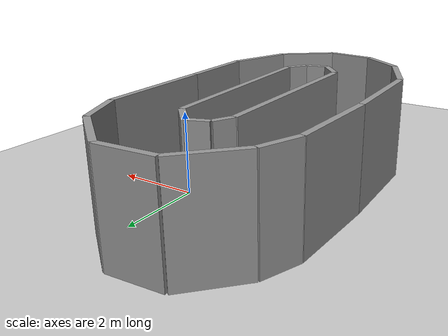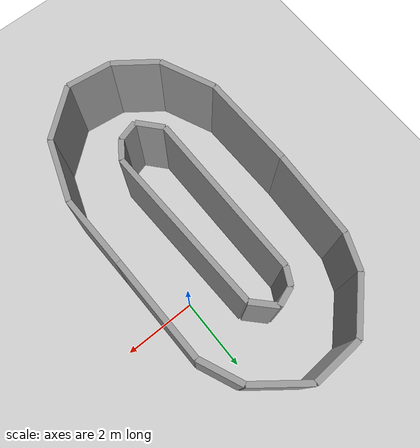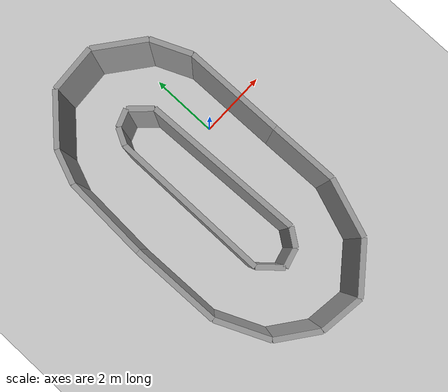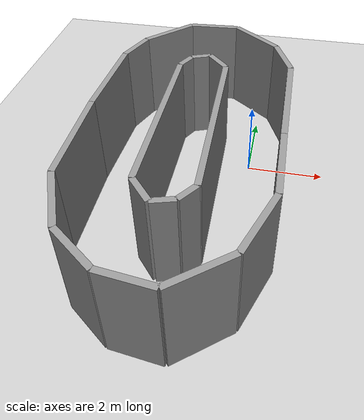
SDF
<sdf version="1.6">
 <world name="default">
  <model name="ground_plane">
   <static>1</static>
   <link name="link">
    <collision name="collision">
     <geometry><plane><normal>0 0 1</normal><size>100 100</size></plane></geometry>
     <surface><friction><ode><mu>100</mu><mu2>50</mu2></ode></friction></surface>
    </collision>
    <visual name="visual">
     <cast_shadows>0</cast_shadows>
     <geometry><plane><normal>0 0 1</normal><size>100 100</size></plane></geometry>
     <material>
      <script><uri>file://media/materials/scripts/gazebo.material</uri><name>Gazebo/Grey</name></script>
     </material>
    </visual>
   </link>
  </model>
  <model name="track2">
   <link name="wall_000">
    <collision name="wall_000_Collision">
     <geometry><box><size>1.195634 0.15 2.5</size></box></geometry>
     <pose>0 0 1.25 0 -0 0</pose>
    </collision>
    <visual name="wall_000_Visual">
     <pose>0 0 1.25 0 -0 0</pose>
     <geometry><box><size>1.195634 0.15 2.5</size></box></geometry>
     <material>
      <script><uri>file://media/materials/scripts/gazebo.material</uri><name>Gazebo/Grey</name></script>
      <ambient>1 1 1 1</ambient>
     </material>
     <meta><layer>0</layer></meta>
    </visual>
    <pose>0.586740 1.912500 0 0 -0 -1.157576</pose>
   </link>
   <link name="wall_001">
    <collision name="wall_001_Collision">
     <geometry><box><size>1.548632 0.15 2.5</size></box></geometry>
     <pose>0 0 1.25 0 -0 0</pose>
    </collision>
    <visual name="wall_001_Visual">
     <pose>0 0 1.25 0 -0 0</pose>
     <geometry><box><size>1.548632 0.15 2.5</size></box></geometry>
     <material>
      <script><uri>file://media/materials/scripts/gazebo.material</uri><name>Gazebo/Grey</name></script>
      <ambient>1 1 1 1</ambient>
     </material>
     <meta><layer>0</layer></meta>
    </visual>
    <pose>-0.266760 2.932500 0 0 -0 -0.656333</pose>
   </link>
   <link name="wall_002">
    <collision name="wall_002_Collision">
     <geometry><box><size>1.362576 0.15 2.5</size></box></geometry>
     <pose>0 0 1.25 0 -0 0</pose>
    </collision>
    <visual name="wall_002_Visual">
     <pose>0 0 1.25 0 -0 0</pose>
     <geometry><box><size>1.362576 0.15 2.5</size></box></geometry>
     <material>
      <script><uri>file://media/materials/scripts/gazebo.material</uri><name>Gazebo/Grey</name></script>
      <ambient>1 1 1 1</ambient>
     </material>
     <meta><layer>0</layer></meta>
    </visual>
    <pose>-1.560000 3.360000 0 0 -0 0.066100</pose>
   </link>
   <link name="wall_003">
    <collision name="wall_003_Collision">
     <geometry><box><size>1.558364 0.15 2.5</size></box></geometry>
     <pose>0 0 1.25 0 -0 0</pose>
    </collision>
    <visual name="wall_003_Visual">
     <pose>0 0 1.25 0 -0 0</pose>
     <geometry><box><size>1.558364 0.15 2.5</size></box></geometry>
     <material>
      <script><uri>file://media/materials/scripts/gazebo.material</uri><name>Gazebo/Grey</name></script>
      <ambient>1 1 1 1</ambient>
     </material>
     <meta><layer>0</layer></meta>
    </visual>
    <pose>-2.786700 2.760000 0 0 -0 0.792749</pose>
   </link>
   <link name="wall_004">
    <collision name="wall_004_Collision">
     <geometry><box><size>0.983273 0.15 2.5</size></box></geometry>
     <pose>0 0 1.25 0 -0 0</pose>
    </collision>
    <visual name="wall_004_Visual">
     <pose>0 0 1.25 0 -0 0</pose>
     <geometry><box><size>0.983273 0.15 2.5</size></box></geometry>
     <material>
      <script><uri>file://media/materials/scripts/gazebo.material</uri><name>Gazebo/Grey</name></script>
      <ambient>1 1 1 1</ambient>
     </material>
     <meta><layer>0</layer></meta>
    </visual>
    <pose>-3.513600 1.747500 0 0 -0 1.195956</pose>
   </link>
   <link name="wall_005">
    <collision name="wall_005_Collision">
     <geometry><box><size>2.372378 0.15 2.5</size></box></geometry>
     <pose>0 0 1.25 0 -0 0</pose>
    </collision>
    <visual name="wall_005_Visual">
     <pose>0 0 1.25 0 -0 0</pose>
     <geometry><box><size>2.372378 0.15 2.5</size></box></geometry>
     <material>
      <script><uri>file://media/materials/scripts/gazebo.material</uri><name>Gazebo/Grey</name></script>
      <ambient>1 1 1 1</ambient>
     </material>
     <meta><layer>0</layer></meta>
    </visual>
    <pose>-3.746700 0.105000 0 0 -0 1.526016</pose>
   </link>
   <link name="wall_006">
    <collision name="wall_006_Collision">
     <geometry><box><size>2.535562 0.15 2.5</size></box></geometry>
     <pose>0 0 1.25 0 -0 0</pose>
    </collision>
    <visual name="wall_006_Visual">
     <pose>0 0 1.25 0 -0 0</pose>
     <geometry><box><size>2.535562 0.15 2.5</size></box></geometry>
     <material>
      <script><uri>file://media/materials/scripts/gazebo.material</uri><name>Gazebo/Grey</name></script>
      <ambient>1 1 1 1</ambient>
     </material>
     <meta><layer>0</layer></meta>
    </visual>
    <pose>-3.773100 -2.347500 0 0 -0 1.591858</pose>
   </link>
   <link name="wall_007">
    <collision name="wall_007_Collision">
     <geometry><box><size>1.561958 0.15 2.5</size></box></geometry>
     <pose>0 0 1.25 0 -0 0</pose>
    </collision>
    <visual name="wall_007_Visual">
     <pose>0 0 1.25 0 -0 0</pose>
     <geometry><box><size>1.561958 0.15 2.5</size></box></geometry>
     <material>
      <script><uri>file://media/materials/scripts/gazebo.material</uri><name>Gazebo/Grey</name></script>
      <ambient>1 1 1 1</ambient>
     </material>
     <meta><layer>0</layer></meta>
    </visual>
    <pose>-3.426600 -4.327500 0 0 -0 1.992687</pose>
   </link>
   <link name="wall_008">
    <collision name="wall_008_Collision">
     <geometry><box><size>1.280286 0.15 2.5</size></box></geometry>
     <pose>0 0 1.25 0 -0 0</pose>
    </collision>
    <visual name="wall_008_Visual">
     <pose>0 0 1.25 0 -0 0</pose>
     <geometry><box><size>1.280286 0.15 2.5</size></box></geometry>
     <material>
      <script><uri>file://media/materials/scripts/gazebo.material</uri><name>Gazebo/Grey</name></script>
      <ambient>1 1 1 1</ambient>
     </material>
     <meta><layer>0</layer></meta>
    </visual>
    <pose>-2.593500 -5.422500 0 0 -0 2.501185</pose>
   </link>
   <link name="wall_009">
    <collision name="wall_009_Collision">
     <geometry><box><size>1.236135 0.15 2.5</size></box></geometry>
     <pose>0 0 1.25 0 -0 0</pose>
    </collision>
    <visual name="wall_009_Visual">
     <pose>0 0 1.25 0 -0 0</pose>
     <geometry><box><size>1.236135 0.15 2.5</size></box></geometry>
     <material>
      <script><uri>file://media/materials/scripts/gazebo.material</uri><name>Gazebo/Grey</name></script>
      <ambient>1 1 1 1</ambient>
     </material>
     <meta><layer>0</layer></meta>
    </visual>
    <pose>-1.466700 -5.880000 0 0 -0 3.019947</pose>
   </link>
   <link name="wall_010">
    <collision name="wall_010_Collision">
     <geometry><box><size>1.536656 0.15 2.5</size></box></geometry>
     <pose>0 0 1.25 0 -0 0</pose>
    </collision>
    <visual name="wall_010_Visual">
     <pose>0 0 1.25 0 -0 0</pose>
     <geometry><box><size>1.536656 0.15 2.5</size></box></geometry>
     <material>
      <script><uri>file://media/materials/scripts/gazebo.material</uri><name>Gazebo/Grey</name></script>
      <ambient>1 1 1 1</ambient>
     </material>
     <meta><layer>0</layer></meta>
    </visual>
    <pose>-0.253260 -5.475000 0 0 -0 -2.466803</pose>
   </link>
   <link name="wall_011">
    <collision name="wall_011_Collision">
     <geometry><box><size>1.685708 0.15 2.5</size></box></geometry>
     <pose>0 0 1.25 0 -0 0</pose>
    </collision>
    <visual name="wall_011_Visual">
     <pose>0 0 1.25 0 -0 0</pose>
     <geometry><box><size>1.685708 0.15 2.5</size></box></geometry>
     <material>
      <script><uri>file://media/materials/scripts/gazebo.material</uri><name>Gazebo/Grey</name></script>
      <ambient>1 1 1 1</ambient>
     </material>
     <meta><layer>0</layer></meta>
    </visual>
    <pose>0.626640 -4.200000 0 0 -0 -1.909386</pose>
   </link>
   <link name="wall_012">
    <collision name="wall_012_Collision">
     <geometry><box><size>1.935418 0.15 2.5</size></box></geometry>
     <pose>0 0 1.25 0 -0 0</pose>
    </collision>
    <visual name="wall_012_Visual">
     <pose>0 0 1.25 0 -0 0</pose>
     <geometry><box><size>1.935418 0.15 2.5</size></box></geometry>
     <material>
      <script><uri>file://media/materials/scripts/gazebo.material</uri><name>Gazebo/Grey</name></script>
      <ambient>1 1 1 1</ambient>
     </material>
     <meta><layer>0</layer></meta>
    </visual>
    <pose>0.886500 -2.437500 0 0 -0 -1.550024</pose>
   </link>
   <link name="wall_013">
    <collision name="wall_013_Collision">
     <geometry><box><size>2.835277 0.15 2.5</size></box></geometry>
     <pose>0 0 1.25 0 -0 0</pose>
    </collision>
    <visual name="wall_013_Visual">
     <pose>0 0 1.25 0 -0 0</pose>
     <geometry><box><size>2.835277 0.15 2.5</size></box></geometry>
     <material>
      <script><uri>file://media/materials/scripts/gazebo.material</uri><name>Gazebo/Grey</name></script>
      <ambient>1 1 1 1</ambient>
     </material>
     <meta><layer>0</layer></meta>
    </visual>
    <pose>0.846600 -0.052500 0 0 -0 -1.556829</pose>
   </link>
   <link name="wall_014">
    <collision name="wall_014_Collision">
     <geometry><box><size>0.729845 0.15 2.5</size></box></geometry>
     <pose>0 0 1.25 0 -0 0</pose>
    </collision>
    <visual name="wall_014_Visual">
     <pose>0 0 1.25 0 -0 0</pose>
     <geometry><box><size>0.729845 0.15 2.5</size></box></geometry>
     <material>
      <script><uri>file://media/materials/scripts/gazebo.material</uri><name>Gazebo/Grey</name></script>
      <ambient>1 1 1 1</ambient>
     </material>
     <meta><layer>0</layer></meta>
    </visual>
    <pose>-1.119900 1.372500 0 0 -0 -0.802838</pose>
   </link>
   <link name="wall_015">
    <collision name="wall_015_Collision">
     <geometry><box><size>0.512640 0.15 2.5</size></box></geometry>
     <pose>0 0 1.25 0 -0 0</pose>
    </collision>
    <visual name="wall_015_Visual">
     <pose>0 0 1.25 0 -0 0</pose>
     <geometry><box><size>0.512640 0.15 2.5</size></box></geometry>
     <material>
      <script><uri>file://media/materials/scripts/gazebo.material</uri><name>Gazebo/Grey</name></script>
      <ambient>1 1 1 1</ambient>
     </material>
     <meta><layer>0</layer></meta>
    </visual>
    <pose>-1.613400 1.545000 0 0 -0 0.358771</pose>
   </link>
   <link name="wall_016">
    <collision name="wall_016_Collision">
     <geometry><box><size>0.490574 0.15 2.5</size></box></geometry>
     <pose>0 0 1.25 0 -0 0</pose>
    </collision>
    <visual name="wall_016_Visual">
     <pose>0 0 1.25 0 -0 0</pose>
     <geometry><box><size>0.490574 0.15 2.5</size></box></geometry>
     <material>
      <script><uri>file://media/materials/scripts/gazebo.material</uri><name>Gazebo/Grey</name></script>
      <ambient>1 1 1 1</ambient>
     </material>
     <meta><layer>0</layer></meta>
    </visual>
    <pose>-1.966800 1.237500 0 0 -0 1.090192</pose>
   </link>
   <link name="wall_017">
    <collision name="wall_017_Collision">
     <geometry><box><size>4.515021 0.15 2.5</size></box></geometry>
     <pose>0 0 1.25 0 -0 0</pose>
    </collision>
    <visual name="wall_017_Visual">
     <pose>0 0 1.25 0 -0 0</pose>
     <geometry><box><size>4.515021 0.15 2.5</size></box></geometry>
     <material>
      <script><uri>file://media/materials/scripts/gazebo.material</uri><name>Gazebo/Grey</name></script>
      <ambient>1 1 1 1</ambient>
     </material>
     <meta><layer>0</layer></meta>
    </visual>
    <pose>-2.073300 -1.237500 0 0 -0 1.573853</pose>
   </link>
   <link name="wall_018">
    <collision name="wall_018_Collision">
     <geometry><box><size>0.762457 0.15 2.5</size></box></geometry>
     <pose>0 0 1.25 0 -0 0</pose>
    </collision>
    <visual name="wall_018_Visual">
     <pose>0 0 1.25 0 -0 0</pose>
     <geometry><box><size>0.762457 0.15 2.5</size></box></geometry>
     <material>
      <script><uri>file://media/materials/scripts/gazebo.material</uri><name>Gazebo/Grey</name></script>
      <ambient>1 1 1 1</ambient>
     </material>
     <meta><layer>0</layer></meta>
    </visual>
    <pose>-1.813200 -3.780000 0 0 -0 2.297177</pose>
   </link>
   <link name="wall_019">
    <collision name="wall_019_Collision">
     <geometry><box><size>0.554090 0.15 2.5</size></box></geometry>
     <pose>0 0 1.25 0 -0 0</pose>
    </collision>
    <visual name="wall_019_Visual">
     <pose>0 0 1.25 0 -0 0</pose>
     <geometry><box><size>0.554090 0.15 2.5</size></box></geometry>
     <material>
      <script><uri>file://media/materials/scripts/gazebo.material</uri><name>Gazebo/Grey</name></script>
      <ambient>1 1 1 1</ambient>
     </material>
     <meta><layer>0</layer></meta>
    </visual>
    <pose>-1.293300 -3.990000 0 0 -0 -2.867458</pose>
   </link>
   <link name="wall_020">
    <collision name="wall_020_Collision">
     <geometry><box><size>0.552062 0.15 2.5</size></box></geometry>
     <pose>0 0 1.25 0 -0 0</pose>
    </collision>
    <visual name="wall_020_Visual">
     <pose>0 0 1.25 0 -0 0</pose>
     <geometry><box><size>0.552062 0.15 2.5</size></box></geometry>
     <material>
      <script><uri>file://media/materials/scripts/gazebo.material</uri><name>Gazebo/Grey</name></script>
      <ambient>1 1 1 1</ambient>
     </material>
     <meta><layer>0</layer></meta>
    </visual>
    <pose>-0.866700 -3.690000 0 0 -0 -2.188645</pose>
   </link>
   <link name="wall_021">
    <collision name="wall_021_Collision">
     <geometry><box><size>4.577783 0.15 2.5</size></box></geometry>
     <pose>0 0 1.25 0 -0 0</pose>
    </collision>
    <visual name="wall_021_Visual">
     <pose>0 0 1.25 0 -0 0</pose>
     <geometry><box><size>4.577783 0.15 2.5</size></box></geometry>
     <material>
      <script><uri>file://media/materials/scripts/gazebo.material</uri><name>Gazebo/Grey</name></script>
      <ambient>1 1 1 1</ambient>
     </material>
     <meta><layer>0</layer></meta>
    </visual>
    <pose>-0.786600 -1.177500 0 0 -0 -1.535925</pose>
   </link>
   <static>1</static>
  </model>
 </world>
</sdf>
